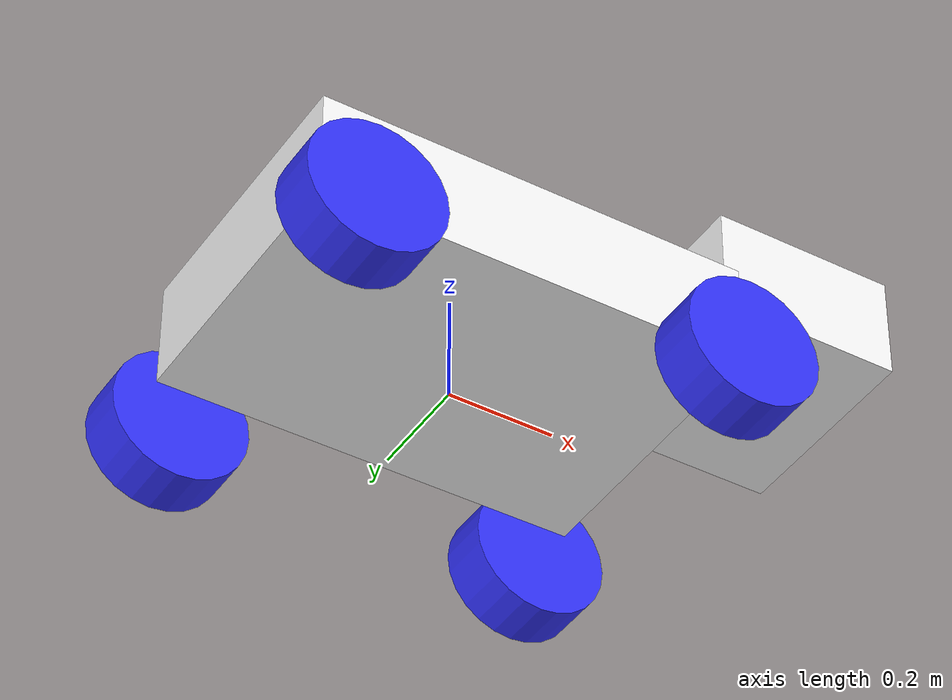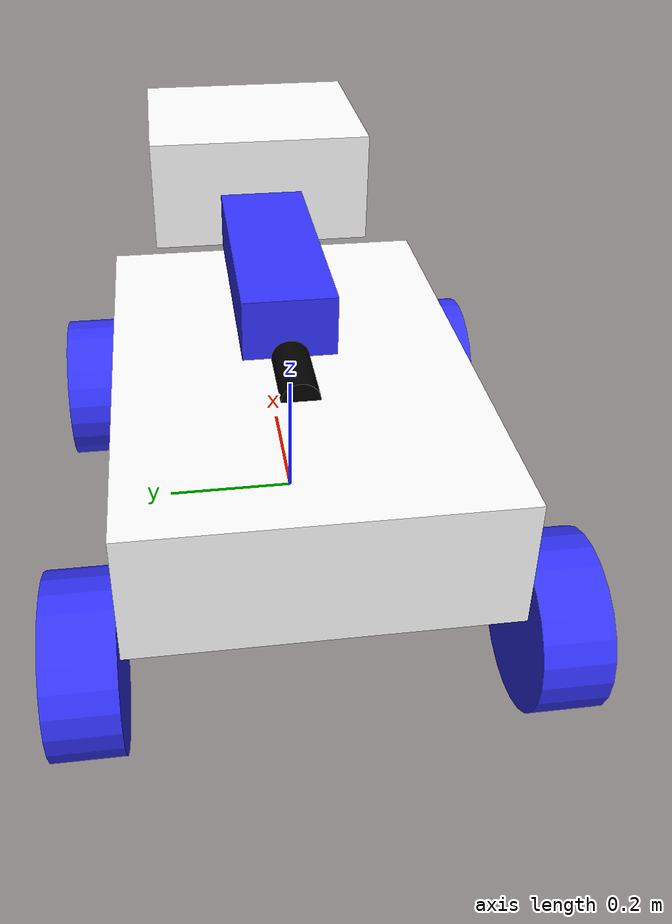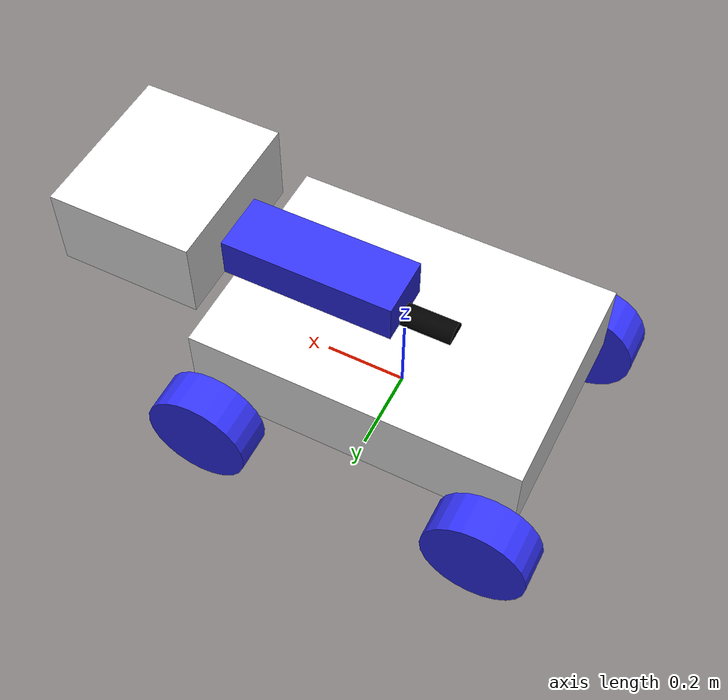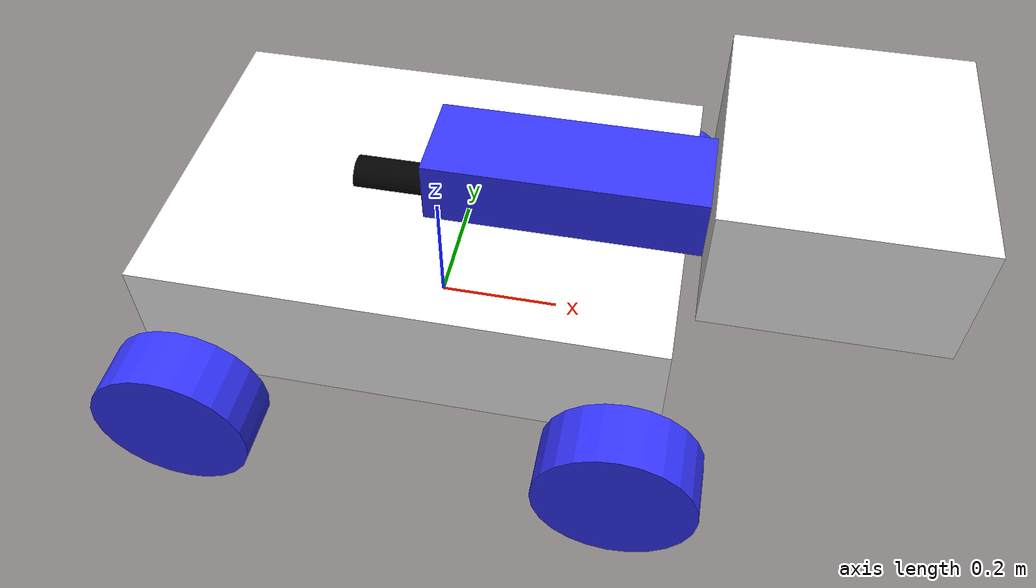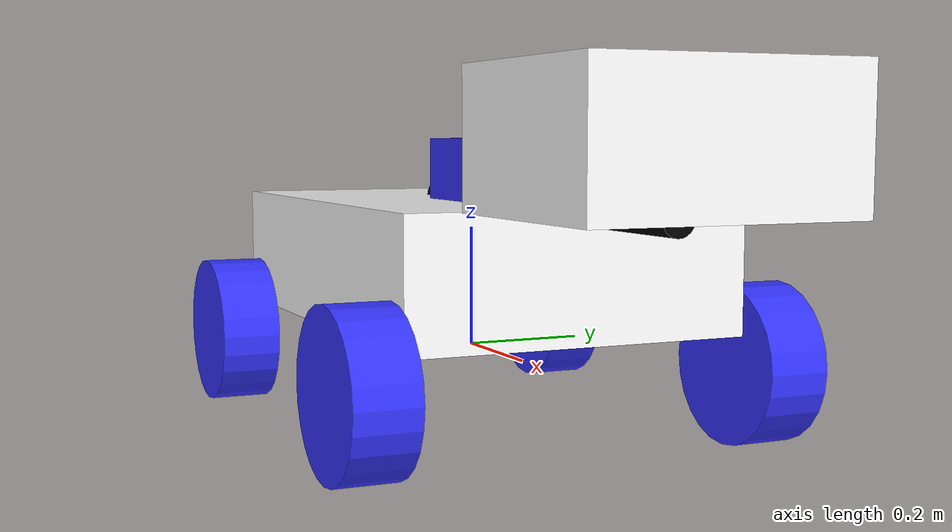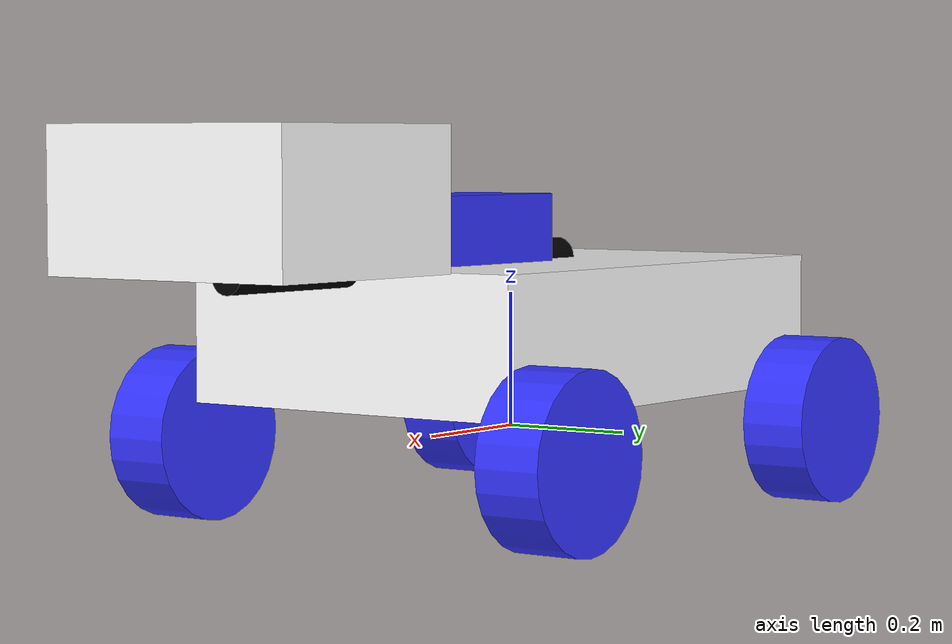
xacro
<?xml version="1.0"?>
<robot xmlns:xacro="http://www.ros.org/wiki/xacro" name="lunabot">

    <!-- ===============================
         Shared inertial helper macros
         (box, cylinder, sphere)
         =============================== -->
    <xacro:include filename="inertial_macros.xacro"/>
    <xacro:include filename="lunabot_ros2_control.xacro"/>
    <!-- ===============================
         Materials (visual only)
         =============================== -->
    <material name="white">
        <color rgba="1 1 1 1"/>
    </material>

    <material name="blue">
        <color rgba="0.2 0.2 1 1"/>
    </material>

    <material name="black">
        <color rgba="0 0 0 1"/>
    </material>

    <link name="base_link"/>

    <!-- ===============================
         CHASSIS
         Represents the rover body.
         Dimensions are approximate.
         =============================== -->
    <joint name="chassis_joint" type="fixed">
        <parent link="base_link"/>
        <child link="chassis"/>
        <!-- chassis sits slightly above ground -->
        <origin xyz="0 0 0.15"/>
    </joint>

    <link name="chassis">
        <visual>
            <geometry>
                <!-- Rough Lunabot body -->
                <box size="0.8 0.55 0.2"/>
            </geometry>
            <material name="white"/>
        </visual>

        <collision>
            <geometry>
                <box size="0.8 0.55 0.2"/>
            </geometry>
        </collision>

        <!-- Not physically accurate.
             Exists for simulation stability -->
        <xacro:inertial_box mass="20.0" x="0.8" y="0.55" z="0.2">
            <origin xyz="0 0 0" rpy="0 0 0"/>
        </xacro:inertial_box>
    </link>

    <!-- ===============================
         WHEEL MACRO
         All four wheels are identical.
         Skid steer control is handled in software.
         =============================== -->
    <xacro:macro name="wheel" params="name x y z">
        <joint name="${name}_joint" type="continuous">
            <parent link="base_link"/>
            <child link="${name}"/>
            <!-- rotate cylinder so it spins correctly -->
            <origin xyz="${x} ${y} ${z}" rpy="-${pi/2} 0 0"/>
            <axis xyz="0 0 1"/>
        </joint>

        <link name="${name}">
            <visual>
                <geometry>
                    <!-- ~10 inch wheel -->
                    <cylinder radius="0.127" length="0.1"/>
                </geometry>
                <material name="blue"/>
            </visual>

            <collision>
                <geometry>
                    <cylinder radius="0.127" length="0.1"/>
                </geometry>
            </collision>

            <!-- Simplified inertia -->
            <xacro:inertial_cylinder mass="2.0" length="0.1" radius="0.127">
                <origin xyz="0 0 0" rpy="0 0 0"/>
            </xacro:inertial_cylinder>
        </link>
    </xacro:macro>

    <!-- ===============================
         FOUR WHEELS (4WD, skid steer)
         =============================== -->

    <!-- Front Left -->
    <xacro:wheel name="front_left_wheel"  x="0.35"  y="0.325" z="0"/>

    <!-- Front Right -->
    <xacro:wheel name="front_right_wheel" x="0.35"  y="-0.325" z="0"/>

    <!-- Rear Left -->
    <xacro:wheel name="rear_left_wheel"   x="-0.35" y="0.325" z="0"/>

    <!-- Rear Right -->
    <xacro:wheel name="rear_right_wheel"  x="-0.35" y="-0.325" z="0"/>

    <!-- ===============================
         LIFT + BUCKET ASSEMBLY
         Simplified representation of the
         lift arm, bucket, and actuators.
         =============================== -->
    <joint name="lift_joint" type="revolute">
        <parent link="chassis"/>
        <child link="lift_arm"/>
        <!-- Lift pivot near the front-top of chassis -->
        <origin xyz="0.3 0 0.15" rpy="0 0 0"/>
        <axis xyz="0 1 0"/>
        <limit lower="-0.5" upper="1.2" effort="200" velocity="1.0"/>
    </joint>

    <link name="lift_arm">
        <visual>
            <geometry>
                <box size="0.6 0.15 0.1"/>
            </geometry>
            <material name="blue"/>
        </visual>
        <collision>
            <geometry>
                <box size="0.6 0.15 0.1"/>
            </geometry>
        </collision>
        <xacro:inertial_box mass="6.0" x="0.6" y="0.15" z="0.1">
            <origin xyz="0.15 0 0.05" rpy="0 0 0"/>
        </xacro:inertial_box>
    </link>

    <joint name="bucket_joint" type="revolute">
        <parent link="lift_arm"/>
        <child link="bucket"/>
        <!-- Bucket hinge at front of arm -->
        <origin xyz="0.3 0 0.05" rpy="0 0 0"/>
        <axis xyz="0 1 0"/>
        <limit lower="-1.2" upper="0.8" effort="150" velocity="1.0"/>
    </joint>

    <link name="bucket">
        <visual>
            <geometry>
                <box size="0.35 0.4 0.2"/>
            </geometry>
            <material name="white"/>
        </visual>
        <collision>
            <geometry>
                <box size="0.35 0.4 0.2"/>
            </geometry>
        </collision>
        <xacro:inertial_box mass="4.0" x="0.35" y="0.4" z="0.2">
            <origin xyz="0 0 0" rpy="0 0 0"/>
        </xacro:inertial_box>
    </link>

    <!-- Lift actuator (visual only) -->
    <joint name="lift_actuator_joint" type="fixed">
        <parent link="chassis"/>
        <child link="lift_actuator"/>
        <origin xyz="0.1 0 0.1" rpy="0 ${pi/2} 0"/>
    </joint>

    <link name="lift_actuator">
        <visual>
            <geometry>
                <cylinder radius="0.03" length="0.45"/>
            </geometry>
            <material name="black"/>
        </visual>
        <collision>
            <geometry>
                <cylinder radius="0.03" length="0.45"/>
            </geometry>
        </collision>
        <xacro:inertial_cylinder mass="1.0" length="0.45" radius="0.03">
            <origin xyz="0 0 0" rpy="0 0 0"/>
        </xacro:inertial_cylinder>
    </link>

    <!-- Tilt actuator (visual only) -->
    <joint name="tilt_actuator_joint" type="fixed">
        <parent link="lift_arm"/>
        <child link="tilt_actuator"/>
        <origin xyz="0.2 0 -0.05" rpy="0 ${pi/2} 0"/>
    </joint>

    <link name="tilt_actuator">
        <visual>
            <geometry>
                <cylinder radius="0.025" length="0.3"/>
            </geometry>
            <material name="black"/>
        </visual>
        <collision>
            <geometry>
                <cylinder radius="0.025" length="0.3"/>
            </geometry>
        </collision>
        <xacro:inertial_cylinder mass="0.6" length="0.3" radius="0.025">
            <origin xyz="0 0 0" rpy="0 0 0"/>
        </xacro:inertial_cylinder>
    </link>

</robot>
